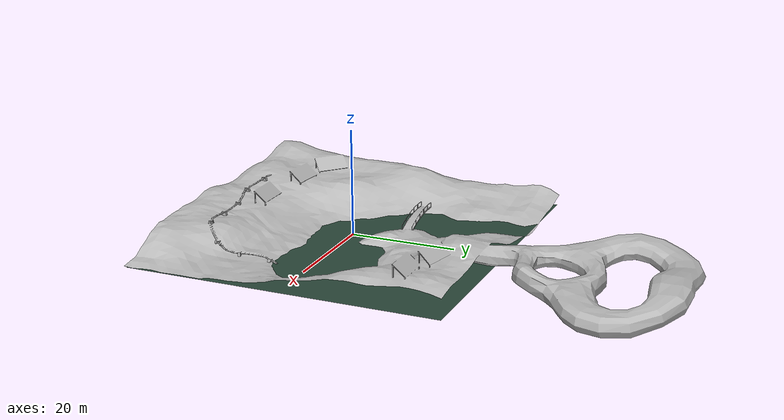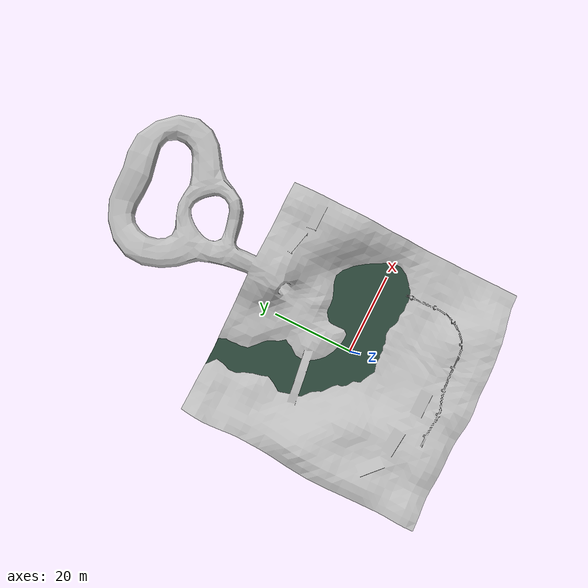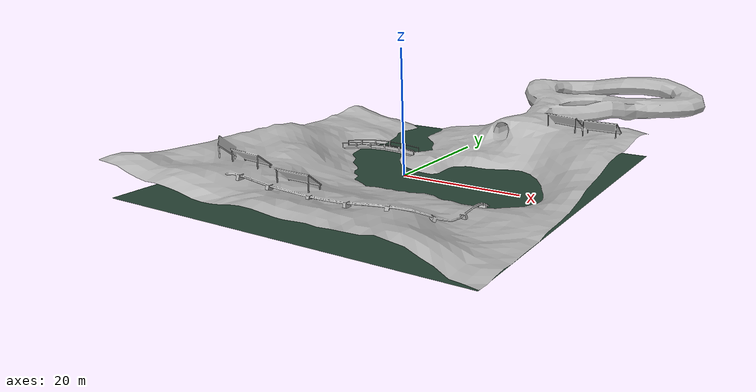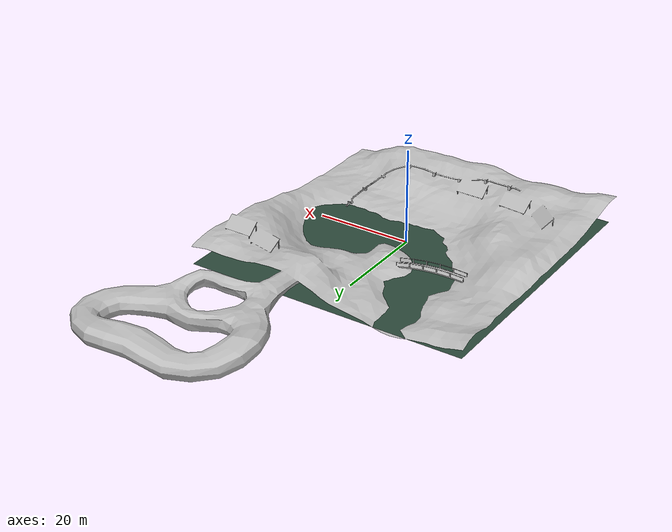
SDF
<sdf version="1.6">
 <world name="inspection">
  <plugin filename="ignition-gazebo-physics-system" name="gz::sim::systems::Physics"/>
  <plugin filename="gz-sim-sensors-system" name="gz::sim::systems::Sensors"/>
  <plugin filename="gz-sim-imu-system" name="gz::sim::systems::Imu">
   <render_engine>ogre2</render_engine>
  </plugin>
  <plugin filename="gz-sim-scene-broadcaster-system" name="gz::sim::systems::SceneBroadcaster"/>
  <plugin filename="gz-sim-user-commands-system" name="gz::sim::systems::UserCommands"/>
  <light name="sun" type="directional">
   <pose>0 0 10 0 -0 0</pose>
   <diffuse>1 1 1 1</diffuse>
   <specular>0.2 0.2 0.2 1</specular>
   <attenuation>
    <range>1000</range>
    <constant>0.9</constant>
    <linear>0.01</linear>
    <quadratic>0.001</quadratic>
   </attenuation>
   <direction>-0.5 -0.5 -1</direction>
  </light>
  <physics name="default_physics" default="0" type="ode">
   <max_step_size>0.01</max_step_size>
   <real_time_factor>1</real_time_factor>
   <real_time_update_rate>100</real_time_update_rate>
  </physics>
  <scene><ambient>1 1 1 1</ambient><background>1 1 1 1</background><shadows>1</shadows></scene>
  <spherical_coordinates>
   <surface_model>EARTH_WGS84</surface_model>
   <latitude_deg>43.5655</latitude_deg>
   <longitude_deg>1.4740</longitude_deg>
   <elevation>150</elevation>
   <heading_deg>180</heading_deg>
  </spherical_coordinates>
  <gravity>0 0 -9.8</gravity>
  <magnetic_field>6e-06 2.3e-05 -4.2e-05</magnetic_field>
  <atmosphere type="adiabatic"/>
  <audio><device>default</device></audio>
  <model name="inspection_water_geom">
   <link name="inspection_water_link">
    <inertial>
     <mass>1</mass>
     <inertia><ixx>1</ixx><ixy>0</ixy><ixz>0</ixz><iyy>1</iyy><iyz>0</iyz><izz>1</izz></inertia>
    </inertial>
    <visual name="inspection_water_link_visual">
     <geometry>
      <mesh><scale>1 1 1</scale><uri>model://cpr_inspection/meshes/inspection_water.dae</uri></mesh>
     </geometry>
    </visual>
   </link>
   <static>1</static>
  </model>
  <model name="inspection_geom">
   <link name="inspection_world_link">
    <inertial>
     <mass>1</mass>
     <inertia><ixx>1</ixx><ixy>0</ixy><ixz>0</ixz><iyy>1</iyy><iyz>0</iyz><izz>1</izz></inertia>
    </inertial>
    <collision name="inspection_world_link_collision">
     <geometry>
      <mesh><scale>1 1 1</scale><uri>model://cpr_inspection/meshes/inspection_world.dae</uri></mesh>
     </geometry>
    </collision>
    <visual name="inspection_world_link_visual">
     <geometry>
      <mesh><scale>1 1 1</scale><uri>model://cpr_inspection/meshes/inspection_world.dae</uri></mesh>
     </geometry>
    </visual>
   </link>
   <static>1</static>
  </model>
 </world>
</sdf>
